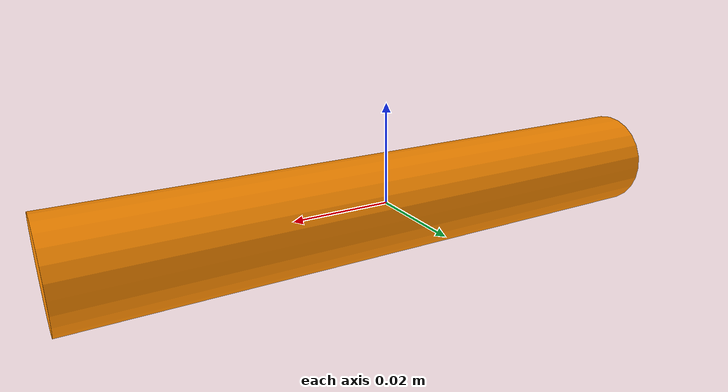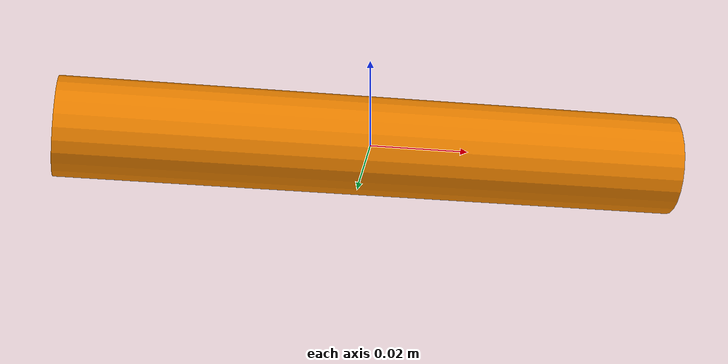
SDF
<?xml version="1.0"?>
<sdf version="1.5">
  <model name="torpedo">
    <static>false</static>
    <link name="body">
      <!-- Change this to reflect real values -->
      <inertial>
        <mass>.022</mass>
        <inertia>
          <ixx>1.18</ixx>
          <ixy>-0.003</ixy>
          <ixz>0.04</ixz>
          <iyy>1.431</iyy>
          <iyz>-0.034</iyz>
          <izz>1.262</izz>
        </inertia>
      </inertial>

      <velocity_decay>
        <linear>0.00001</linear>
        <angular>0.00001</angular>
      </velocity_decay>
      <collision name='bodycol'>
        <pose>0 0 0 0 1.57 0</pose>
        <geometry>
          <cylinder>
            <radius>.01</radius>
            <length>.125</length>
          </cylinder>
        </geometry>
      </collision>
      <visual name="bodyvisual">
        <pose>0 0 0 0 1.57 0</pose>
        <geometry>
          <cylinder>
            <radius>.01</radius>
            <length>.125</length>
          </cylinder>
        </geometry>
        <material>
          <ambient>1 0.55 0 1</ambient>
        </material>
      </visual>

      <sensor name="contact" type="contact">
        <contact>
          <collision>bodycol</collision>
        </contact>
        <update_rate>50</update_rate>
        <plugin name='gazebo_ros_bumper_controller' filename="libgazebo_ros_bumper.so">
          <alwaysOn>true</alwaysOn>
          <bumperTopicName>contact_bumper</bumperTopicName>
        </plugin>
      </sensor>
    </link>

    <plugin name="torpedo_boyancy" filename="libsubjugator_buoyancy.so">
      <fluid_density>1000</fluid_density>
      <drag_coefficient>100</drag_coefficient>
      <link name="body">
        <center_of_volume>0 0 0</center_of_volume>
        <volume>0.0000156</volume>
      </link>
    </plugin>

  </model>
</sdf>
